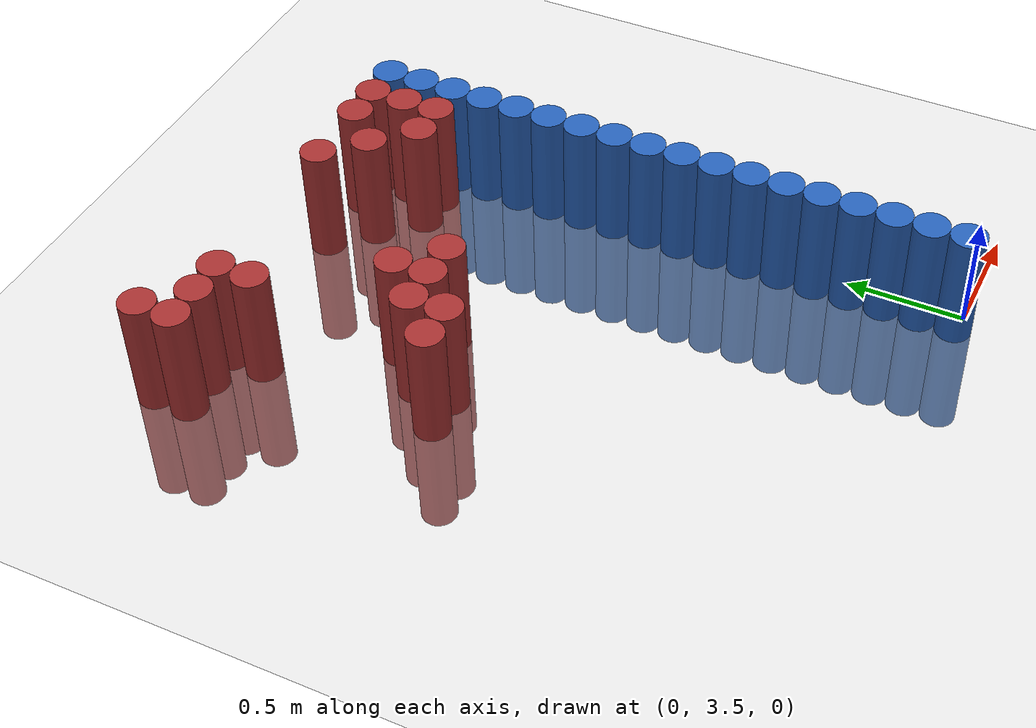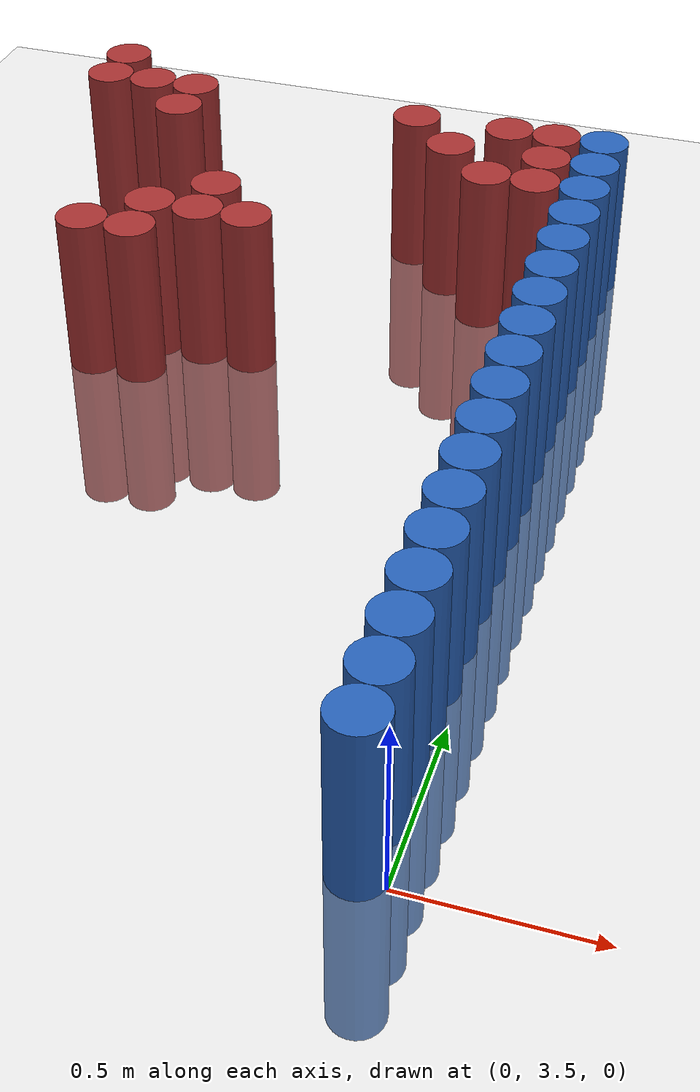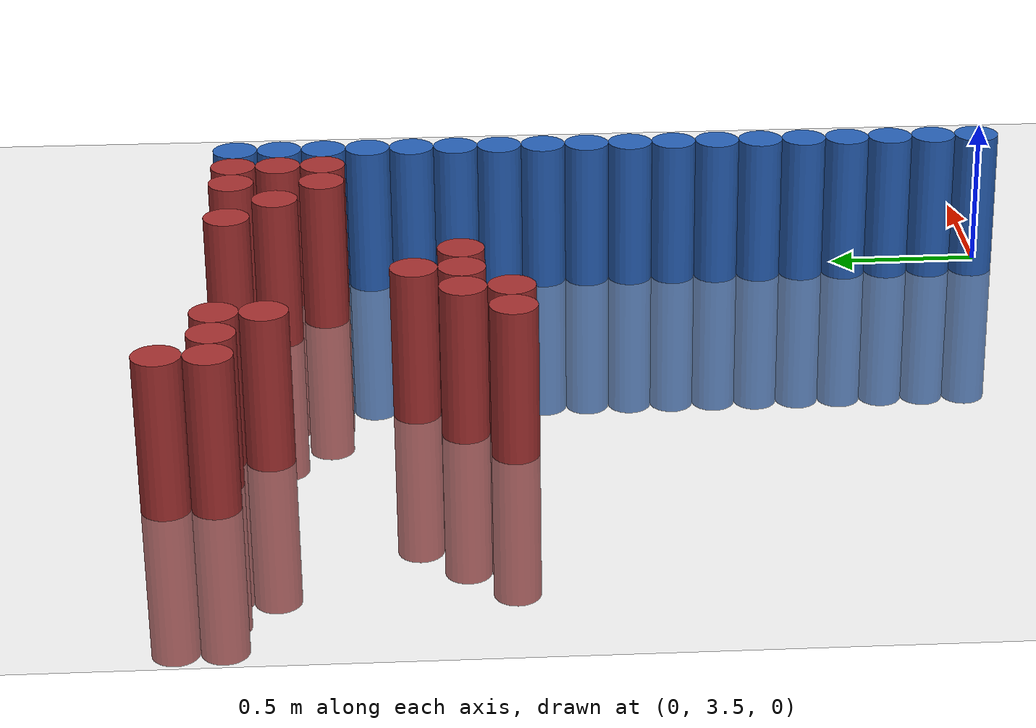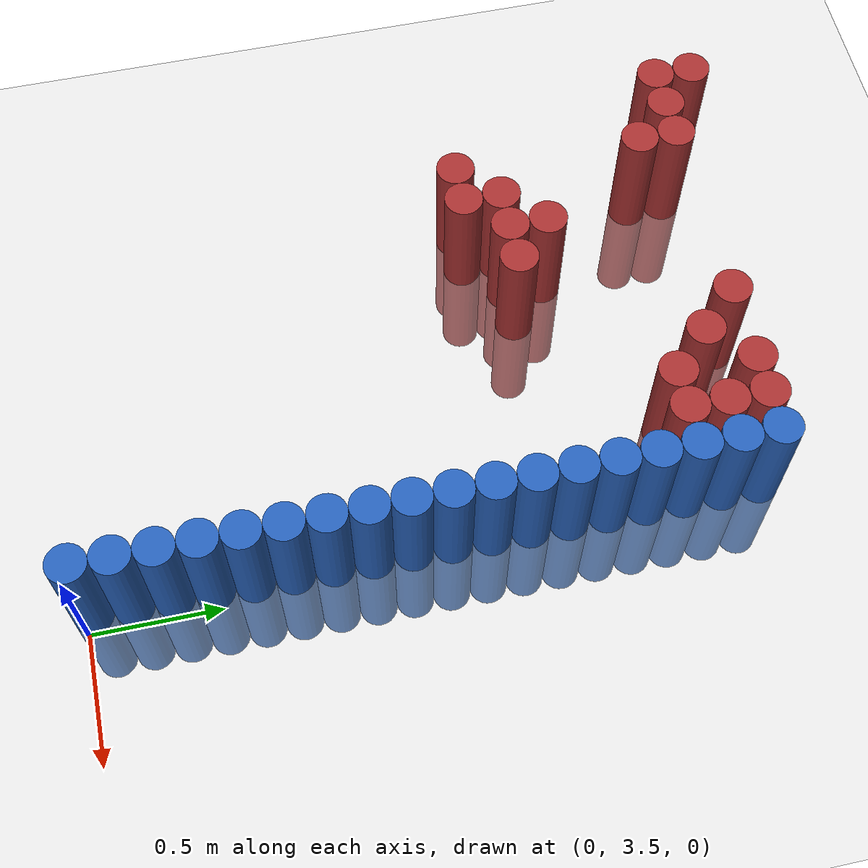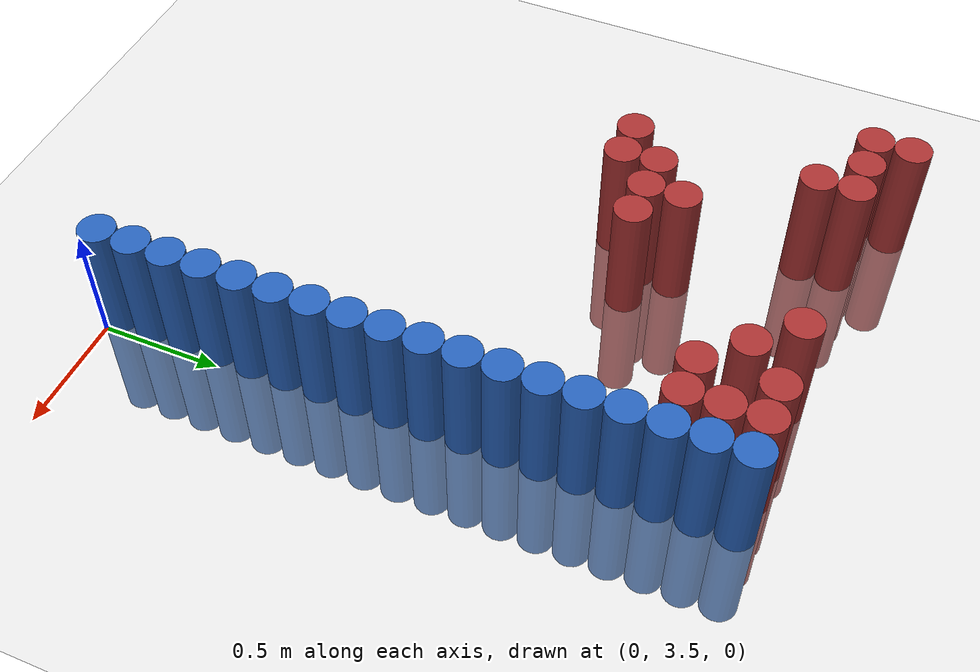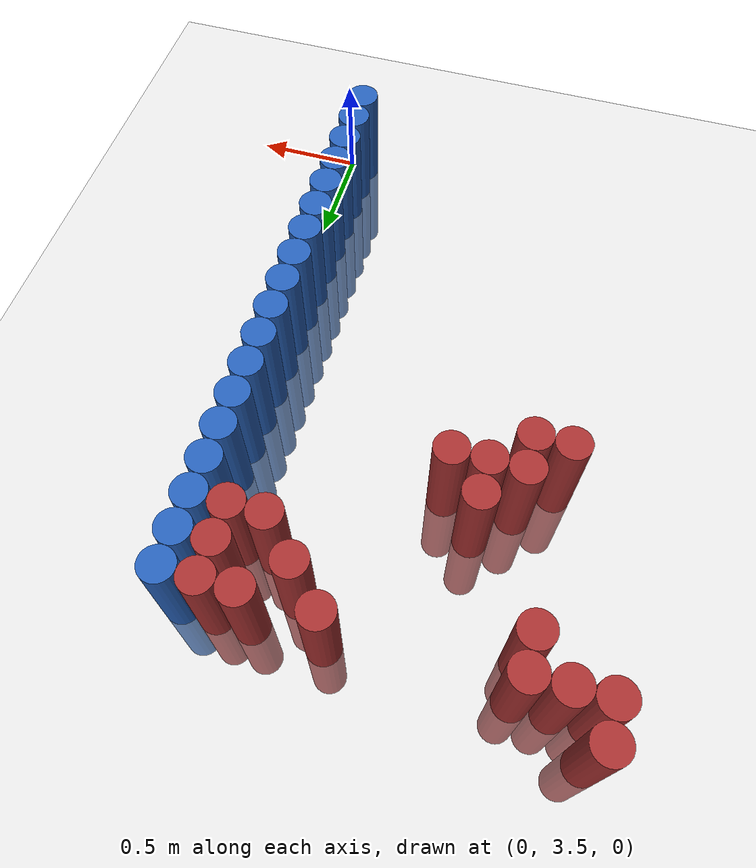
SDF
<sdf version="1.6">
 <world name="default">
  <model name="ground_plane">
   <static>1</static>
   <link name="link">
    <collision name="collision">
     <geometry><plane><normal>0 0 1</normal><size>100 100</size></plane></geometry>
     <surface><friction><ode><mu>100</mu><mu2>50</mu2></ode></friction></surface>
    </collision>
    <visual name="visual">
     <cast_shadows>0</cast_shadows>
     <geometry><plane><normal>0 0 1</normal><size>100 100</size></plane></geometry>
     <material>
      <script><uri>file://media/materials/scripts/gazebo.material</uri><name>Gazebo/Grey</name></script>
     </material>
    </visual>
   </link>
  </model>
  <model name="unit_cylinder_74">
   <static>1</static>
   <pose>-0.075000 3.525000 0.000000 0.000000 0.000000 0.000000</pose>
   <link name="link">
    <inertial>
     <mass>1</mass>
     <inertia><ixx>0.145833</ixx><ixy>0</ixy><ixz>0</ixz><iyy>0.145833</iyy><iyz>0</iyz><izz>0.125</izz></inertia>
    </inertial>
    <collision name="collision">
     <geometry><cylinder><radius>0.075000</radius><length>1</length></cylinder></geometry>
    </collision>
    <visual name="visual">
     <geometry><cylinder><radius>0.075000</radius><length>1</length></cylinder></geometry>
     <material>
      <ambient>0.152000 0.379000 0.720000 1</ambient>
      <diffuse>0.152000 0.379000 0.720000 1</diffuse>
     </material>
     <material>
      <script><name>Gazebo/Grey</name><uri>file://media/materials/scripts/gazebo.material</uri></script>
     </material>
    </visual>
    <sensor name="sensor_contact" type="contact"><contact><collision>collision</collision></contact></sensor>
   </link>
   <plugin filename="gz-sim-touchplugin-system" name="gz::sim::systems::TouchPlugin">
    <target>robot</target>
    <namespace>robot</namespace>
    <time>0.001</time>
    <enabled>true</enabled>
   </plugin>
  </model>
  <model name="unit_cylinder_76">
   <static>1</static>
   <pose>-0.075000 3.675000 0.000000 0.000000 0.000000 0.000000</pose>
   <link name="link">
    <inertial>
     <mass>1</mass>
     <inertia><ixx>0.145833</ixx><ixy>0</ixy><ixz>0</ixz><iyy>0.145833</iyy><iyz>0</iyz><izz>0.125</izz></inertia>
    </inertial>
    <collision name="collision">
     <geometry><cylinder><radius>0.075000</radius><length>1</length></cylinder></geometry>
    </collision>
    <visual name="visual">
     <geometry><cylinder><radius>0.075000</radius><length>1</length></cylinder></geometry>
     <material>
      <ambient>0.152000 0.379000 0.720000 1</ambient>
      <diffuse>0.152000 0.379000 0.720000 1</diffuse>
     </material>
     <material>
      <script><name>Gazebo/Grey</name><uri>file://media/materials/scripts/gazebo.material</uri></script>
     </material>
    </visual>
    <sensor name="sensor_contact" type="contact"><contact><collision>collision</collision></contact></sensor>
   </link>
   <plugin filename="gz-sim-touchplugin-system" name="gz::sim::systems::TouchPlugin">
    <target>robot</target>
    <namespace>robot</namespace>
    <time>0.001</time>
    <enabled>true</enabled>
   </plugin>
  </model>
  <model name="unit_cylinder_78">
   <static>1</static>
   <pose>-0.075000 3.825000 0.000000 0.000000 0.000000 0.000000</pose>
   <link name="link">
    <inertial>
     <mass>1</mass>
     <inertia><ixx>0.145833</ixx><ixy>0</ixy><ixz>0</ixz><iyy>0.145833</iyy><iyz>0</iyz><izz>0.125</izz></inertia>
    </inertial>
    <collision name="collision">
     <geometry><cylinder><radius>0.075000</radius><length>1</length></cylinder></geometry>
    </collision>
    <visual name="visual">
     <geometry><cylinder><radius>0.075000</radius><length>1</length></cylinder></geometry>
     <material>
      <ambient>0.152000 0.379000 0.720000 1</ambient>
      <diffuse>0.152000 0.379000 0.720000 1</diffuse>
     </material>
     <material>
      <script><name>Gazebo/Grey</name><uri>file://media/materials/scripts/gazebo.material</uri></script>
     </material>
    </visual>
    <sensor name="sensor_contact" type="contact"><contact><collision>collision</collision></contact></sensor>
   </link>
   <plugin filename="gz-sim-touchplugin-system" name="gz::sim::systems::TouchPlugin">
    <target>robot</target>
    <namespace>robot</namespace>
    <time>0.001</time>
    <enabled>true</enabled>
   </plugin>
  </model>
  <model name="unit_cylinder_80">
   <static>1</static>
   <pose>-0.075000 3.975000 0.000000 0.000000 0.000000 0.000000</pose>
   <link name="link">
    <inertial>
     <mass>1</mass>
     <inertia><ixx>0.145833</ixx><ixy>0</ixy><ixz>0</ixz><iyy>0.145833</iyy><iyz>0</iyz><izz>0.125</izz></inertia>
    </inertial>
    <collision name="collision">
     <geometry><cylinder><radius>0.075000</radius><length>1</length></cylinder></geometry>
    </collision>
    <visual name="visual">
     <geometry><cylinder><radius>0.075000</radius><length>1</length></cylinder></geometry>
     <material>
      <ambient>0.152000 0.379000 0.720000 1</ambient>
      <diffuse>0.152000 0.379000 0.720000 1</diffuse>
     </material>
     <material>
      <script><name>Gazebo/Grey</name><uri>file://media/materials/scripts/gazebo.material</uri></script>
     </material>
    </visual>
    <sensor name="sensor_contact" type="contact"><contact><collision>collision</collision></contact></sensor>
   </link>
   <plugin filename="gz-sim-touchplugin-system" name="gz::sim::systems::TouchPlugin">
    <target>robot</target>
    <namespace>robot</namespace>
    <time>0.001</time>
    <enabled>true</enabled>
   </plugin>
  </model>
  <model name="unit_cylinder_82">
   <static>1</static>
   <pose>-0.075000 4.125000 0.000000 0.000000 0.000000 0.000000</pose>
   <link name="link">
    <inertial>
     <mass>1</mass>
     <inertia><ixx>0.145833</ixx><ixy>0</ixy><ixz>0</ixz><iyy>0.145833</iyy><iyz>0</iyz><izz>0.125</izz></inertia>
    </inertial>
    <collision name="collision">
     <geometry><cylinder><radius>0.075000</radius><length>1</length></cylinder></geometry>
    </collision>
    <visual name="visual">
     <geometry><cylinder><radius>0.075000</radius><length>1</length></cylinder></geometry>
     <material>
      <ambient>0.152000 0.379000 0.720000 1</ambient>
      <diffuse>0.152000 0.379000 0.720000 1</diffuse>
     </material>
     <material>
      <script><name>Gazebo/Grey</name><uri>file://media/materials/scripts/gazebo.material</uri></script>
     </material>
    </visual>
    <sensor name="sensor_contact" type="contact"><contact><collision>collision</collision></contact></sensor>
   </link>
   <plugin filename="gz-sim-touchplugin-system" name="gz::sim::systems::TouchPlugin">
    <target>robot</target>
    <namespace>robot</namespace>
    <time>0.001</time>
    <enabled>true</enabled>
   </plugin>
  </model>
  <model name="unit_cylinder_84">
   <static>1</static>
   <pose>-0.075000 4.275000 0.000000 0.000000 0.000000 0.000000</pose>
   <link name="link">
    <inertial>
     <mass>1</mass>
     <inertia><ixx>0.145833</ixx><ixy>0</ixy><ixz>0</ixz><iyy>0.145833</iyy><iyz>0</iyz><izz>0.125</izz></inertia>
    </inertial>
    <collision name="collision">
     <geometry><cylinder><radius>0.075000</radius><length>1</length></cylinder></geometry>
    </collision>
    <visual name="visual">
     <geometry><cylinder><radius>0.075000</radius><length>1</length></cylinder></geometry>
     <material>
      <ambient>0.152000 0.379000 0.720000 1</ambient>
      <diffuse>0.152000 0.379000 0.720000 1</diffuse>
     </material>
     <material>
      <script><name>Gazebo/Grey</name><uri>file://media/materials/scripts/gazebo.material</uri></script>
     </material>
    </visual>
    <sensor name="sensor_contact" type="contact"><contact><collision>collision</collision></contact></sensor>
   </link>
   <plugin filename="gz-sim-touchplugin-system" name="gz::sim::systems::TouchPlugin">
    <target>robot</target>
    <namespace>robot</namespace>
    <time>0.001</time>
    <enabled>true</enabled>
   </plugin>
  </model>
  <model name="unit_cylinder_86">
   <static>1</static>
   <pose>-0.075000 4.425000 0.000000 0.000000 0.000000 0.000000</pose>
   <link name="link">
    <inertial>
     <mass>1</mass>
     <inertia><ixx>0.145833</ixx><ixy>0</ixy><ixz>0</ixz><iyy>0.145833</iyy><iyz>0</iyz><izz>0.125</izz></inertia>
    </inertial>
    <collision name="collision">
     <geometry><cylinder><radius>0.075000</radius><length>1</length></cylinder></geometry>
    </collision>
    <visual name="visual">
     <geometry><cylinder><radius>0.075000</radius><length>1</length></cylinder></geometry>
     <material>
      <ambient>0.152000 0.379000 0.720000 1</ambient>
      <diffuse>0.152000 0.379000 0.720000 1</diffuse>
     </material>
     <material>
      <script><name>Gazebo/Grey</name><uri>file://media/materials/scripts/gazebo.material</uri></script>
     </material>
    </visual>
    <sensor name="sensor_contact" type="contact"><contact><collision>collision</collision></contact></sensor>
   </link>
   <plugin filename="gz-sim-touchplugin-system" name="gz::sim::systems::TouchPlugin">
    <target>robot</target>
    <namespace>robot</namespace>
    <time>0.001</time>
    <enabled>true</enabled>
   </plugin>
  </model>
  <model name="unit_cylinder_88">
   <static>1</static>
   <pose>-0.075000 4.575000 0.000000 0.000000 0.000000 0.000000</pose>
   <link name="link">
    <inertial>
     <mass>1</mass>
     <inertia><ixx>0.145833</ixx><ixy>0</ixy><ixz>0</ixz><iyy>0.145833</iyy><iyz>0</iyz><izz>0.125</izz></inertia>
    </inertial>
    <collision name="collision">
     <geometry><cylinder><radius>0.075000</radius><length>1</length></cylinder></geometry>
    </collision>
    <visual name="visual">
     <geometry><cylinder><radius>0.075000</radius><length>1</length></cylinder></geometry>
     <material>
      <ambient>0.152000 0.379000 0.720000 1</ambient>
      <diffuse>0.152000 0.379000 0.720000 1</diffuse>
     </material>
     <material>
      <script><name>Gazebo/Grey</name><uri>file://media/materials/scripts/gazebo.material</uri></script>
     </material>
    </visual>
    <sensor name="sensor_contact" type="contact"><contact><collision>collision</collision></contact></sensor>
   </link>
   <plugin filename="gz-sim-touchplugin-system" name="gz::sim::systems::TouchPlugin">
    <target>robot</target>
    <namespace>robot</namespace>
    <time>0.001</time>
    <enabled>true</enabled>
   </plugin>
  </model>
  <model name="unit_cylinder_90">
   <static>1</static>
   <pose>-0.075000 4.725000 0.000000 0.000000 0.000000 0.000000</pose>
   <link name="link">
    <inertial>
     <mass>1</mass>
     <inertia><ixx>0.145833</ixx><ixy>0</ixy><ixz>0</ixz><iyy>0.145833</iyy><iyz>0</iyz><izz>0.125</izz></inertia>
    </inertial>
    <collision name="collision">
     <geometry><cylinder><radius>0.075000</radius><length>1</length></cylinder></geometry>
    </collision>
    <visual name="visual">
     <geometry><cylinder><radius>0.075000</radius><length>1</length></cylinder></geometry>
     <material>
      <ambient>0.152000 0.379000 0.720000 1</ambient>
      <diffuse>0.152000 0.379000 0.720000 1</diffuse>
     </material>
     <material>
      <script><name>Gazebo/Grey</name><uri>file://media/materials/scripts/gazebo.material</uri></script>
     </material>
    </visual>
    <sensor name="sensor_contact" type="contact"><contact><collision>collision</collision></contact></sensor>
   </link>
   <plugin filename="gz-sim-touchplugin-system" name="gz::sim::systems::TouchPlugin">
    <target>robot</target>
    <namespace>robot</namespace>
    <time>0.001</time>
    <enabled>true</enabled>
   </plugin>
  </model>
  <model name="unit_cylinder_92">
   <static>1</static>
   <pose>-0.075000 4.875000 0.000000 0.000000 0.000000 0.000000</pose>
   <link name="link">
    <inertial>
     <mass>1</mass>
     <inertia><ixx>0.145833</ixx><ixy>0</ixy><ixz>0</ixz><iyy>0.145833</iyy><iyz>0</iyz><izz>0.125</izz></inertia>
    </inertial>
    <collision name="collision">
     <geometry><cylinder><radius>0.075000</radius><length>1</length></cylinder></geometry>
    </collision>
    <visual name="visual">
     <geometry><cylinder><radius>0.075000</radius><length>1</length></cylinder></geometry>
     <material>
      <ambient>0.152000 0.379000 0.720000 1</ambient>
      <diffuse>0.152000 0.379000 0.720000 1</diffuse>
     </material>
     <material>
      <script><name>Gazebo/Grey</name><uri>file://media/materials/scripts/gazebo.material</uri></script>
     </material>
    </visual>
    <sensor name="sensor_contact" type="contact"><contact><collision>collision</collision></contact></sensor>
   </link>
   <plugin filename="gz-sim-touchplugin-system" name="gz::sim::systems::TouchPlugin">
    <target>robot</target>
    <namespace>robot</namespace>
    <time>0.001</time>
    <enabled>true</enabled>
   </plugin>
  </model>
  <model name="unit_cylinder_94">
   <static>1</static>
   <pose>-0.075000 5.025000 0.000000 0.000000 0.000000 0.000000</pose>
   <link name="link">
    <inertial>
     <mass>1</mass>
     <inertia><ixx>0.145833</ixx><ixy>0</ixy><ixz>0</ixz><iyy>0.145833</iyy><iyz>0</iyz><izz>0.125</izz></inertia>
    </inertial>
    <collision name="collision">
     <geometry><cylinder><radius>0.075000</radius><length>1</length></cylinder></geometry>
    </collision>
    <visual name="visual">
     <geometry><cylinder><radius>0.075000</radius><length>1</length></cylinder></geometry>
     <material>
      <ambient>0.152000 0.379000 0.720000 1</ambient>
      <diffuse>0.152000 0.379000 0.720000 1</diffuse>
     </material>
     <material>
      <script><name>Gazebo/Grey</name><uri>file://media/materials/scripts/gazebo.material</uri></script>
     </material>
    </visual>
    <sensor name="sensor_contact" type="contact"><contact><collision>collision</collision></contact></sensor>
   </link>
   <plugin filename="gz-sim-touchplugin-system" name="gz::sim::systems::TouchPlugin">
    <target>robot</target>
    <namespace>robot</namespace>
    <time>0.001</time>
    <enabled>true</enabled>
   </plugin>
  </model>
  <model name="unit_cylinder_204">
   <static>1</static>
   <pose>-1.725000 6.075000 0.000000 0.000000 0.000000 0.000000</pose>
   <link name="link">
    <inertial>
     <mass>1</mass>
     <inertia><ixx>0.145833</ixx><ixy>0</ixy><ixz>0</ixz><iyy>0.145833</iyy><iyz>0</iyz><izz>0.125</izz></inertia>
    </inertial>
    <collision name="collision">
     <geometry><cylinder><radius>0.075000</radius><length>1</length></cylinder></geometry>
    </collision>
    <visual name="visual">
     <geometry><cylinder><radius>0.075000</radius><length>1</length></cylinder></geometry>
     <material>
      <ambient>0.648000 0.192000 0.192000 1</ambient>
      <diffuse>0.648000 0.192000 0.192000 1</diffuse>
     </material>
     <material>
      <script><name>Gazebo/Grey</name><uri>file://media/materials/scripts/gazebo.material</uri></script>
     </material>
    </visual>
    <sensor name="sensor_contact" type="contact"><contact><collision>collision</collision></contact></sensor>
   </link>
   <plugin filename="gz-sim-touchplugin-system" name="gz::sim::systems::TouchPlugin">
    <target>robot</target>
    <namespace>robot</namespace>
    <time>0.001</time>
    <enabled>true</enabled>
   </plugin>
  </model>
  <model name="unit_cylinder_205">
   <static>1</static>
   <pose>-1.725000 6.225000 0.000000 0.000000 0.000000 0.000000</pose>
   <link name="link">
    <inertial>
     <mass>1</mass>
     <inertia><ixx>0.145833</ixx><ixy>0</ixy><ixz>0</ixz><iyy>0.145833</iyy><iyz>0</iyz><izz>0.125</izz></inertia>
    </inertial>
    <collision name="collision">
     <geometry><cylinder><radius>0.075000</radius><length>1</length></cylinder></geometry>
    </collision>
    <visual name="visual">
     <geometry><cylinder><radius>0.075000</radius><length>1</length></cylinder></geometry>
     <material>
      <ambient>0.648000 0.192000 0.192000 1</ambient>
      <diffuse>0.648000 0.192000 0.192000 1</diffuse>
     </material>
     <material>
      <script><name>Gazebo/Grey</name><uri>file://media/materials/scripts/gazebo.material</uri></script>
     </material>
    </visual>
    <sensor name="sensor_contact" type="contact"><contact><collision>collision</collision></contact></sensor>
   </link>
   <plugin filename="gz-sim-touchplugin-system" name="gz::sim::systems::TouchPlugin">
    <target>robot</target>
    <namespace>robot</namespace>
    <time>0.001</time>
    <enabled>true</enabled>
   </plugin>
  </model>
  <model name="unit_cylinder_207">
   <static>1</static>
   <pose>-1.575000 6.075000 0.000000 0.000000 0.000000 0.000000</pose>
   <link name="link">
    <inertial>
     <mass>1</mass>
     <inertia><ixx>0.145833</ixx><ixy>0</ixy><ixz>0</ixz><iyy>0.145833</iyy><iyz>0</iyz><izz>0.125</izz></inertia>
    </inertial>
    <collision name="collision">
     <geometry><cylinder><radius>0.075000</radius><length>1</length></cylinder></geometry>
    </collision>
    <visual name="visual">
     <geometry><cylinder><radius>0.075000</radius><length>1</length></cylinder></geometry>
     <material>
      <ambient>0.648000 0.192000 0.192000 1</ambient>
      <diffuse>0.648000 0.192000 0.192000 1</diffuse>
     </material>
     <material>
      <script><name>Gazebo/Grey</name><uri>file://media/materials/scripts/gazebo.material</uri></script>
     </material>
    </visual>
    <sensor name="sensor_contact" type="contact"><contact><collision>collision</collision></contact></sensor>
   </link>
   <plugin filename="gz-sim-touchplugin-system" name="gz::sim::systems::TouchPlugin">
    <target>robot</target>
    <namespace>robot</namespace>
    <time>0.001</time>
    <enabled>true</enabled>
   </plugin>
  </model>
  <model name="unit_cylinder_209">
   <static>1</static>
   <pose>-1.425000 5.175000 0.000000 0.000000 0.000000 0.000000</pose>
   <link name="link">
    <inertial>
     <mass>1</mass>
     <inertia><ixx>0.145833</ixx><ixy>0</ixy><ixz>0</ixz><iyy>0.145833</iyy><iyz>0</iyz><izz>0.125</izz></inertia>
    </inertial>
    <collision name="collision">
     <geometry><cylinder><radius>0.075000</radius><length>1</length></cylinder></geometry>
    </collision>
    <visual name="visual">
     <geometry><cylinder><radius>0.075000</radius><length>1</length></cylinder></geometry>
     <material>
      <ambient>0.648000 0.192000 0.192000 1</ambient>
      <diffuse>0.648000 0.192000 0.192000 1</diffuse>
     </material>
     <material>
      <script><name>Gazebo/Grey</name><uri>file://media/materials/scripts/gazebo.material</uri></script>
     </material>
    </visual>
    <sensor name="sensor_contact" type="contact"><contact><collision>collision</collision></contact></sensor>
   </link>
   <plugin filename="gz-sim-touchplugin-system" name="gz::sim::systems::TouchPlugin">
    <target>robot</target>
    <namespace>robot</namespace>
    <time>0.001</time>
    <enabled>true</enabled>
   </plugin>
  </model>
  <model name="unit_cylinder_210">
   <static>1</static>
   <pose>-1.425000 5.925000 0.000000 0.000000 0.000000 0.000000</pose>
   <link name="link">
    <inertial>
     <mass>1</mass>
     <inertia><ixx>0.145833</ixx><ixy>0</ixy><ixz>0</ixz><iyy>0.145833</iyy><iyz>0</iyz><izz>0.125</izz></inertia>
    </inertial>
    <collision name="collision">
     <geometry><cylinder><radius>0.075000</radius><length>1</length></cylinder></geometry>
    </collision>
    <visual name="visual">
     <geometry><cylinder><radius>0.075000</radius><length>1</length></cylinder></geometry>
     <material>
      <ambient>0.648000 0.192000 0.192000 1</ambient>
      <diffuse>0.648000 0.192000 0.192000 1</diffuse>
     </material>
     <material>
      <script><name>Gazebo/Grey</name><uri>file://media/materials/scripts/gazebo.material</uri></script>
     </material>
    </visual>
    <sensor name="sensor_contact" type="contact"><contact><collision>collision</collision></contact></sensor>
   </link>
   <plugin filename="gz-sim-touchplugin-system" name="gz::sim::systems::TouchPlugin">
    <target>robot</target>
    <namespace>robot</namespace>
    <time>0.001</time>
    <enabled>true</enabled>
   </plugin>
  </model>
  <model name="unit_cylinder_211">
   <static>1</static>
   <pose>-1.425000 6.075000 0.000000 0.000000 0.000000 0.000000</pose>
   <link name="link">
    <inertial>
     <mass>1</mass>
     <inertia><ixx>0.145833</ixx><ixy>0</ixy><ixz>0</ixz><iyy>0.145833</iyy><iyz>0</iyz><izz>0.125</izz></inertia>
    </inertial>
    <collision name="collision">
     <geometry><cylinder><radius>0.075000</radius><length>1</length></cylinder></geometry>
    </collision>
    <visual name="visual">
     <geometry><cylinder><radius>0.075000</radius><length>1</length></cylinder></geometry>
     <material>
      <ambient>0.648000 0.192000 0.192000 1</ambient>
      <diffuse>0.648000 0.192000 0.192000 1</diffuse>
     </material>
     <material>
      <script><name>Gazebo/Grey</name><uri>file://media/materials/scripts/gazebo.material</uri></script>
     </material>
    </visual>
    <sensor name="sensor_contact" type="contact"><contact><collision>collision</collision></contact></sensor>
   </link>
   <plugin filename="gz-sim-touchplugin-system" name="gz::sim::systems::TouchPlugin">
    <target>robot</target>
    <namespace>robot</namespace>
    <time>0.001</time>
    <enabled>true</enabled>
   </plugin>
  </model>
  <model name="unit_cylinder_214">
   <static>1</static>
   <pose>-1.275000 5.175000 0.000000 0.000000 0.000000 0.000000</pose>
   <link name="link">
    <inertial>
     <mass>1</mass>
     <inertia><ixx>0.145833</ixx><ixy>0</ixy><ixz>0</ixz><iyy>0.145833</iyy><iyz>0</iyz><izz>0.125</izz></inertia>
    </inertial>
    <collision name="collision">
     <geometry><cylinder><radius>0.075000</radius><length>1</length></cylinder></geometry>
    </collision>
    <visual name="visual">
     <geometry><cylinder><radius>0.075000</radius><length>1</length></cylinder></geometry>
     <material>
      <ambient>0.648000 0.192000 0.192000 1</ambient>
      <diffuse>0.648000 0.192000 0.192000 1</diffuse>
     </material>
     <material>
      <script><name>Gazebo/Grey</name><uri>file://media/materials/scripts/gazebo.material</uri></script>
     </material>
    </visual>
    <sensor name="sensor_contact" type="contact"><contact><collision>collision</collision></contact></sensor>
   </link>
   <plugin filename="gz-sim-touchplugin-system" name="gz::sim::systems::TouchPlugin">
    <target>robot</target>
    <namespace>robot</namespace>
    <time>0.001</time>
    <enabled>true</enabled>
   </plugin>
  </model>
  <model name="unit_cylinder_215">
   <static>1</static>
   <pose>-1.275000 5.325000 0.000000 0.000000 0.000000 0.000000</pose>
   <link name="link">
    <inertial>
     <mass>1</mass>
     <inertia><ixx>0.145833</ixx><ixy>0</ixy><ixz>0</ixz><iyy>0.145833</iyy><iyz>0</iyz><izz>0.125</izz></inertia>
    </inertial>
    <collision name="collision">
     <geometry><cylinder><radius>0.075000</radius><length>1</length></cylinder></geometry>
    </collision>
    <visual name="visual">
     <geometry><cylinder><radius>0.075000</radius><length>1</length></cylinder></geometry>
     <material>
      <ambient>0.648000 0.192000 0.192000 1</ambient>
      <diffuse>0.648000 0.192000 0.192000 1</diffuse>
     </material>
     <material>
      <script><name>Gazebo/Grey</name><uri>file://media/materials/scripts/gazebo.material</uri></script>
     </material>
    </visual>
    <sensor name="sensor_contact" type="contact"><contact><collision>collision</collision></contact></sensor>
   </link>
   <plugin filename="gz-sim-touchplugin-system" name="gz::sim::systems::TouchPlugin">
    <target>robot</target>
    <namespace>robot</namespace>
    <time>0.001</time>
    <enabled>true</enabled>
   </plugin>
  </model>
  <model name="unit_cylinder_218">
   <static>1</static>
   <pose>-1.125000 5.325000 0.000000 0.000000 0.000000 0.000000</pose>
   <link name="link">
    <inertial>
     <mass>1</mass>
     <inertia><ixx>0.145833</ixx><ixy>0</ixy><ixz>0</ixz><iyy>0.145833</iyy><iyz>0</iyz><izz>0.125</izz></inertia>
    </inertial>
    <collision name="collision">
     <geometry><cylinder><radius>0.075000</radius><length>1</length></cylinder></geometry>
    </collision>
    <visual name="visual">
     <geometry><cylinder><radius>0.075000</radius><length>1</length></cylinder></geometry>
     <material>
      <ambient>0.648000 0.192000 0.192000 1</ambient>
      <diffuse>0.648000 0.192000 0.192000 1</diffuse>
     </material>
     <material>
      <script><name>Gazebo/Grey</name><uri>file://media/materials/scripts/gazebo.material</uri></script>
     </material>
    </visual>
    <sensor name="sensor_contact" type="contact"><contact><collision>collision</collision></contact></sensor>
   </link>
   <plugin filename="gz-sim-touchplugin-system" name="gz::sim::systems::TouchPlugin">
    <target>robot</target>
    <namespace>robot</namespace>
    <time>0.001</time>
    <enabled>true</enabled>
   </plugin>
  </model>
  <model name="unit_cylinder_219">
   <static>1</static>
   <pose>-1.125000 5.475000 0.000000 0.000000 0.000000 0.000000</pose>
   <link name="link">
    <inertial>
     <mass>1</mass>
     <inertia><ixx>0.145833</ixx><ixy>0</ixy><ixz>0</ixz><iyy>0.145833</iyy><iyz>0</iyz><izz>0.125</izz></inertia>
    </inertial>
    <collision name="collision">
     <geometry><cylinder><radius>0.075000</radius><length>1</length></cylinder></geometry>
    </collision>
    <visual name="visual">
     <geometry><cylinder><radius>0.075000</radius><length>1</length></cylinder></geometry>
     <material>
      <ambient>0.648000 0.192000 0.192000 1</ambient>
      <diffuse>0.648000 0.192000 0.192000 1</diffuse>
     </material>
     <material>
      <script><name>Gazebo/Grey</name><uri>file://media/materials/scripts/gazebo.material</uri></script>
     </material>
    </visual>
    <sensor name="sensor_contact" type="contact"><contact><collision>collision</collision></contact></sensor>
   </link>
   <plugin filename="gz-sim-touchplugin-system" name="gz::sim::systems::TouchPlugin">
    <target>robot</target>
    <namespace>robot</namespace>
    <time>0.001</time>
    <enabled>true</enabled>
   </plugin>
  </model>
  <model name="unit_cylinder_221">
   <static>1</static>
   <pose>-0.975000 5.325000 0.000000 0.000000 0.000000 0.000000</pose>
   <link name="link">
    <inertial>
     <mass>1</mass>
     <inertia><ixx>0.145833</ixx><ixy>0</ixy><ixz>0</ixz><iyy>0.145833</iyy><iyz>0</iyz><izz>0.125</izz></inertia>
    </inertial>
    <collision name="collision">
     <geometry><cylinder><radius>0.075000</radius><length>1</length></cylinder></geometry>
    </collision>
    <visual name="visual">
     <geometry><cylinder><radius>0.075000</radius><length>1</length></cylinder></geometry>
     <material>
      <ambient>0.648000 0.192000 0.192000 1</ambient>
      <diffuse>0.648000 0.192000 0.192000 1</diffuse>
     </material>
     <material>
      <script><name>Gazebo/Grey</name><uri>file://media/materials/scripts/gazebo.material</uri></script>
     </material>
    </visual>
    <sensor name="sensor_contact" type="contact"><contact><collision>collision</collision></contact></sensor>
   </link>
   <plugin filename="gz-sim-touchplugin-system" name="gz::sim::systems::TouchPlugin">
    <target>robot</target>
    <namespace>robot</namespace>
    <time>0.001</time>
    <enabled>true</enabled>
   </plugin>
  </model>
  <model name="unit_cylinder_228">
   <static>1</static>
   <pose>-0.675000 6.075000 0.000000 0.000000 0.000000 0.000000</pose>
   <link name="link">
    <inertial>
     <mass>1</mass>
     <inertia><ixx>0.145833</ixx><ixy>0</ixy><ixz>0</ixz><iyy>0.145833</iyy><iyz>0</iyz><izz>0.125</izz></inertia>
    </inertial>
    <collision name="collision">
     <geometry><cylinder><radius>0.075000</radius><length>1</length></cylinder></geometry>
    </collision>
    <visual name="visual">
     <geometry><cylinder><radius>0.075000</radius><length>1</length></cylinder></geometry>
     <material>
      <ambient>0.648000 0.192000 0.192000 1</ambient>
      <diffuse>0.648000 0.192000 0.192000 1</diffuse>
     </material>
     <material>
      <script><name>Gazebo/Grey</name><uri>file://media/materials/scripts/gazebo.material</uri></script>
     </material>
    </visual>
    <sensor name="sensor_contact" type="contact"><contact><collision>collision</collision></contact></sensor>
   </link>
   <plugin filename="gz-sim-touchplugin-system" name="gz::sim::systems::TouchPlugin">
    <target>robot</target>
    <namespace>robot</namespace>
    <time>0.001</time>
    <enabled>true</enabled>
   </plugin>
  </model>
  <model name="unit_cylinder_232">
   <static>1</static>
   <pose>-0.525000 5.925000 0.000000 0.000000 0.000000 0.000000</pose>
   <link name="link">
    <inertial>
     <mass>1</mass>
     <inertia><ixx>0.145833</ixx><ixy>0</ixy><ixz>0</ixz><iyy>0.145833</iyy><iyz>0</iyz><izz>0.125</izz></inertia>
    </inertial>
    <collision name="collision">
     <geometry><cylinder><radius>0.075000</radius><length>1</length></cylinder></geometry>
    </collision>
    <visual name="visual">
     <geometry><cylinder><radius>0.075000</radius><length>1</length></cylinder></geometry>
     <material>
      <ambient>0.648000 0.192000 0.192000 1</ambient>
      <diffuse>0.648000 0.192000 0.192000 1</diffuse>
     </material>
     <material>
      <script><name>Gazebo/Grey</name><uri>file://media/materials/scripts/gazebo.material</uri></script>
     </material>
    </visual>
    <sensor name="sensor_contact" type="contact"><contact><collision>collision</collision></contact></sensor>
   </link>
   <plugin filename="gz-sim-touchplugin-system" name="gz::sim::systems::TouchPlugin">
    <target>robot</target>
    <namespace>robot</namespace>
    <time>0.001</time>
    <enabled>true</enabled>
   </plugin>
  </model>
  <model name="unit_cylinder_237">
   <static>1</static>
   <pose>-0.375000 5.775000 0.000000 0.000000 0.000000 0.000000</pose>
   <link name="link">
    <inertial>
     <mass>1</mass>
     <inertia><ixx>0.145833</ixx><ixy>0</ixy><ixz>0</ixz><iyy>0.145833</iyy><iyz>0</iyz><izz>0.125</izz></inertia>
    </inertial>
    <collision name="collision">
     <geometry><cylinder><radius>0.075000</radius><length>1</length></cylinder></geometry>
    </collision>
    <visual name="visual">
     <geometry><cylinder><radius>0.075000</radius><length>1</length></cylinder></geometry>
     <material>
      <ambient>0.648000 0.192000 0.192000 1</ambient>
      <diffuse>0.648000 0.192000 0.192000 1</diffuse>
     </material>
     <material>
      <script><name>Gazebo/Grey</name><uri>file://media/materials/scripts/gazebo.material</uri></script>
     </material>
    </visual>
    <sensor name="sensor_contact" type="contact"><contact><collision>collision</collision></contact></sensor>
   </link>
   <plugin filename="gz-sim-touchplugin-system" name="gz::sim::systems::TouchPlugin">
    <target>robot</target>
    <namespace>robot</namespace>
    <time>0.001</time>
    <enabled>true</enabled>
   </plugin>
  </model>
  <model name="unit_cylinder_238">
   <static>1</static>
   <pose>-0.375000 6.075000 0.000000 0.000000 0.000000 0.000000</pose>
   <link name="link">
    <inertial>
     <mass>1</mass>
     <inertia><ixx>0.145833</ixx><ixy>0</ixy><ixz>0</ixz><iyy>0.145833</iyy><iyz>0</iyz><izz>0.125</izz></inertia>
    </inertial>
    <collision name="collision">
     <geometry><cylinder><radius>0.075000</radius><length>1</length></cylinder></geometry>
    </collision>
    <visual name="visual">
     <geometry><cylinder><radius>0.075000</radius><length>1</length></cylinder></geometry>
     <material>
      <ambient>0.648000 0.192000 0.192000 1</ambient>
      <diffuse>0.648000 0.192000 0.192000 1</diffuse>
     </material>
     <material>
      <script><name>Gazebo/Grey</name><uri>file://media/materials/scripts/gazebo.material</uri></script>
     </material>
    </visual>
    <sensor name="sensor_contact" type="contact"><contact><collision>collision</collision></contact></sensor>
   </link>
   <plugin filename="gz-sim-touchplugin-system" name="gz::sim::systems::TouchPlugin">
    <target>robot</target>
    <namespace>robot</namespace>
    <time>0.001</time>
    <enabled>true</enabled>
   </plugin>
  </model>
  <model name="unit_cylinder_245">
   <static>1</static>
   <pose>-0.225000 5.775000 0.000000 0.000000 0.000000 0.000000</pose>
   <link name="link">
    <inertial>
     <mass>1</mass>
     <inertia><ixx>0.145833</ixx><ixy>0</ixy><ixz>0</ixz><iyy>0.145833</iyy><iyz>0</iyz><izz>0.125</izz></inertia>
    </inertial>
    <collision name="collision">
     <geometry><cylinder><radius>0.075000</radius><length>1</length></cylinder></geometry>
    </collision>
    <visual name="visual">
     <geometry><cylinder><radius>0.075000</radius><length>1</length></cylinder></geometry>
     <material>
      <ambient>0.648000 0.192000 0.192000 1</ambient>
      <diffuse>0.648000 0.192000 0.192000 1</diffuse>
     </material>
     <material>
      <script><name>Gazebo/Grey</name><uri>file://media/materials/scripts/gazebo.material</uri></script>
     </material>
    </visual>
    <sensor name="sensor_contact" type="contact"><contact><collision>collision</collision></contact></sensor>
   </link>
   <plugin filename="gz-sim-touchplugin-system" name="gz::sim::systems::TouchPlugin">
    <target>robot</target>
    <namespace>robot</namespace>
    <time>0.001</time>
    <enabled>true</enabled>
   </plugin>
  </model>
  <model name="unit_cylinder_246">
   <static>1</static>
   <pose>-0.225000 5.925000 0.000000 0.000000 0.000000 0.000000</pose>
   <link name="link">
    <inertial>
     <mass>1</mass>
     <inertia><ixx>0.145833</ixx><ixy>0</ixy><ixz>0</ixz><iyy>0.145833</iyy><iyz>0</iyz><izz>0.125</izz></inertia>
    </inertial>
    <collision name="collision">
     <geometry><cylinder><radius>0.075000</radius><length>1</length></cylinder></geometry>
    </collision>
    <visual name="visual">
     <geometry><cylinder><radius>0.075000</radius><length>1</length></cylinder></geometry>
     <material>
      <ambient>0.648000 0.192000 0.192000 1</ambient>
      <diffuse>0.648000 0.192000 0.192000 1</diffuse>
     </material>
     <material>
      <script><name>Gazebo/Grey</name><uri>file://media/materials/scripts/gazebo.material</uri></script>
     </material>
    </visual>
    <sensor name="sensor_contact" type="contact"><contact><collision>collision</collision></contact></sensor>
   </link>
   <plugin filename="gz-sim-touchplugin-system" name="gz::sim::systems::TouchPlugin">
    <target>robot</target>
    <namespace>robot</namespace>
    <time>0.001</time>
    <enabled>true</enabled>
   </plugin>
  </model>
  <model name="unit_cylinder_247">
   <static>1</static>
   <pose>-0.225000 6.075000 0.000000 0.000000 0.000000 0.000000</pose>
   <link name="link">
    <inertial>
     <mass>1</mass>
     <inertia><ixx>0.145833</ixx><ixy>0</ixy><ixz>0</ixz><iyy>0.145833</iyy><iyz>0</iyz><izz>0.125</izz></inertia>
    </inertial>
    <collision name="collision">
     <geometry><cylinder><radius>0.075000</radius><length>1</length></cylinder></geometry>
    </collision>
    <visual name="visual">
     <geometry><cylinder><radius>0.075000</radius><length>1</length></cylinder></geometry>
     <material>
      <ambient>0.648000 0.192000 0.192000 1</ambient>
      <diffuse>0.648000 0.192000 0.192000 1</diffuse>
     </material>
     <material>
      <script><name>Gazebo/Grey</name><uri>file://media/materials/scripts/gazebo.material</uri></script>
     </material>
    </visual>
    <sensor name="sensor_contact" type="contact"><contact><collision>collision</collision></contact></sensor>
   </link>
   <plugin filename="gz-sim-touchplugin-system" name="gz::sim::systems::TouchPlugin">
    <target>robot</target>
    <namespace>robot</namespace>
    <time>0.001</time>
    <enabled>true</enabled>
   </plugin>
  </model>
  <model name="unit_cylinder_262">
   <static>1</static>
   <pose>-0.075000 5.175000 0.000000 0.000000 0.000000 0.000000</pose>
   <link name="link">
    <inertial>
     <mass>1</mass>
     <inertia><ixx>0.145833</ixx><ixy>0</ixy><ixz>0</ixz><iyy>0.145833</iyy><iyz>0</iyz><izz>0.125</izz></inertia>
    </inertial>
    <collision name="collision">
     <geometry><cylinder><radius>0.075000</radius><length>1</length></cylinder></geometry>
    </collision>
    <visual name="visual">
     <geometry><cylinder><radius>0.075000</radius><length>1</length></cylinder></geometry>
     <material>
      <ambient>0.152000 0.379000 0.720000 1</ambient>
      <diffuse>0.152000 0.379000 0.720000 1</diffuse>
     </material>
     <material>
      <script><name>Gazebo/Grey</name><uri>file://media/materials/scripts/gazebo.material</uri></script>
     </material>
    </visual>
    <sensor name="sensor_contact" type="contact"><contact><collision>collision</collision></contact></sensor>
   </link>
   <plugin filename="gz-sim-touchplugin-system" name="gz::sim::systems::TouchPlugin">
    <target>robot</target>
    <namespace>robot</namespace>
    <time>0.001</time>
    <enabled>true</enabled>
   </plugin>
  </model>
  <model name="unit_cylinder_263">
   <static>1</static>
   <pose>-0.075000 5.325000 0.000000 0.000000 0.000000 0.000000</pose>
   <link name="link">
    <inertial>
     <mass>1</mass>
     <inertia><ixx>0.145833</ixx><ixy>0</ixy><ixz>0</ixz><iyy>0.145833</iyy><iyz>0</iyz><izz>0.125</izz></inertia>
    </inertial>
    <collision name="collision">
     <geometry><cylinder><radius>0.075000</radius><length>1</length></cylinder></geometry>
    </collision>
    <visual name="visual">
     <geometry><cylinder><radius>0.075000</radius><length>1</length></cylinder></geometry>
     <material>
      <ambient>0.152000 0.379000 0.720000 1</ambient>
      <diffuse>0.152000 0.379000 0.720000 1</diffuse>
     </material>
     <material>
      <script><name>Gazebo/Grey</name><uri>file://media/materials/scripts/gazebo.material</uri></script>
     </material>
    </visual>
    <sensor name="sensor_contact" type="contact"><contact><collision>collision</collision></contact></sensor>
   </link>
   <plugin filename="gz-sim-touchplugin-system" name="gz::sim::systems::TouchPlugin">
    <target>robot</target>
    <namespace>robot</namespace>
    <time>0.001</time>
    <enabled>true</enabled>
   </plugin>
  </model>
  <model name="unit_cylinder_264">
   <static>1</static>
   <pose>-0.075000 5.475000 0.000000 0.000000 0.000000 0.000000</pose>
   <link name="link">
    <inertial>
     <mass>1</mass>
     <inertia><ixx>0.145833</ixx><ixy>0</ixy><ixz>0</ixz><iyy>0.145833</iyy><iyz>0</iyz><izz>0.125</izz></inertia>
    </inertial>
    <collision name="collision">
     <geometry><cylinder><radius>0.075000</radius><length>1</length></cylinder></geometry>
    </collision>
    <visual name="visual">
     <geometry><cylinder><radius>0.075000</radius><length>1</length></cylinder></geometry>
     <material>
      <ambient>0.152000 0.379000 0.720000 1</ambient>
      <diffuse>0.152000 0.379000 0.720000 1</diffuse>
     </material>
     <material>
      <script><name>Gazebo/Grey</name><uri>file://media/materials/scripts/gazebo.material</uri></script>
     </material>
    </visual>
    <sensor name="sensor_contact" type="contact"><contact><collision>collision</collision></contact></sensor>
   </link>
   <plugin filename="gz-sim-touchplugin-system" name="gz::sim::systems::TouchPlugin">
    <target>robot</target>
    <namespace>robot</namespace>
    <time>0.001</time>
    <enabled>true</enabled>
   </plugin>
  </model>
  <model name="unit_cylinder_265">
   <static>1</static>
   <pose>-0.075000 5.625000 0.000000 0.000000 0.000000 0.000000</pose>
   <link name="link">
    <inertial>
     <mass>1</mass>
     <inertia><ixx>0.145833</ixx><ixy>0</ixy><ixz>0</ixz><iyy>0.145833</iyy><iyz>0</iyz><izz>0.125</izz></inertia>
    </inertial>
    <collision name="collision">
     <geometry><cylinder><radius>0.075000</radius><length>1</length></cylinder></geometry>
    </collision>
    <visual name="visual">
     <geometry><cylinder><radius>0.075000</radius><length>1</length></cylinder></geometry>
     <material>
      <ambient>0.152000 0.379000 0.720000 1</ambient>
      <diffuse>0.152000 0.379000 0.720000 1</diffuse>
     </material>
     <material>
      <script><name>Gazebo/Grey</name><uri>file://media/materials/scripts/gazebo.material</uri></script>
     </material>
    </visual>
    <sensor name="sensor_contact" type="contact"><contact><collision>collision</collision></contact></sensor>
   </link>
   <plugin filename="gz-sim-touchplugin-system" name="gz::sim::systems::TouchPlugin">
    <target>robot</target>
    <namespace>robot</namespace>
    <time>0.001</time>
    <enabled>true</enabled>
   </plugin>
  </model>
  <model name="unit_cylinder_266">
   <static>1</static>
   <pose>-0.075000 5.775000 0.000000 0.000000 0.000000 0.000000</pose>
   <link name="link">
    <inertial>
     <mass>1</mass>
     <inertia><ixx>0.145833</ixx><ixy>0</ixy><ixz>0</ixz><iyy>0.145833</iyy><iyz>0</iyz><izz>0.125</izz></inertia>
    </inertial>
    <collision name="collision">
     <geometry><cylinder><radius>0.075000</radius><length>1</length></cylinder></geometry>
    </collision>
    <visual name="visual">
     <geometry><cylinder><radius>0.075000</radius><length>1</length></cylinder></geometry>
     <material>
      <ambient>0.152000 0.379000 0.720000 1</ambient>
      <diffuse>0.152000 0.379000 0.720000 1</diffuse>
     </material>
     <material>
      <script><name>Gazebo/Grey</name><uri>file://media/materials/scripts/gazebo.material</uri></script>
     </material>
    </visual>
    <sensor name="sensor_contact" type="contact"><contact><collision>collision</collision></contact></sensor>
   </link>
   <plugin filename="gz-sim-touchplugin-system" name="gz::sim::systems::TouchPlugin">
    <target>robot</target>
    <namespace>robot</namespace>
    <time>0.001</time>
    <enabled>true</enabled>
   </plugin>
  </model>
  <model name="unit_cylinder_267">
   <static>1</static>
   <pose>-0.075000 5.925000 0.000000 0.000000 0.000000 0.000000</pose>
   <link name="link">
    <inertial>
     <mass>1</mass>
     <inertia><ixx>0.145833</ixx><ixy>0</ixy><ixz>0</ixz><iyy>0.145833</iyy><iyz>0</iyz><izz>0.125</izz></inertia>
    </inertial>
    <collision name="collision">
     <geometry><cylinder><radius>0.075000</radius><length>1</length></cylinder></geometry>
    </collision>
    <visual name="visual">
     <geometry><cylinder><radius>0.075000</radius><length>1</length></cylinder></geometry>
     <material>
      <ambient>0.152000 0.379000 0.720000 1</ambient>
      <diffuse>0.152000 0.379000 0.720000 1</diffuse>
     </material>
     <material>
      <script><name>Gazebo/Grey</name><uri>file://media/materials/scripts/gazebo.material</uri></script>
     </material>
    </visual>
    <sensor name="sensor_contact" type="contact"><contact><collision>collision</collision></contact></sensor>
   </link>
   <plugin filename="gz-sim-touchplugin-system" name="gz::sim::systems::TouchPlugin">
    <target>robot</target>
    <namespace>robot</namespace>
    <time>0.001</time>
    <enabled>true</enabled>
   </plugin>
  </model>
  <model name="unit_cylinder_268">
   <static>1</static>
   <pose>-0.075000 6.075000 0.000000 0.000000 0.000000 0.000000</pose>
   <link name="link">
    <inertial>
     <mass>1</mass>
     <inertia><ixx>0.145833</ixx><ixy>0</ixy><ixz>0</ixz><iyy>0.145833</iyy><iyz>0</iyz><izz>0.125</izz></inertia>
    </inertial>
    <collision name="collision">
     <geometry><cylinder><radius>0.075000</radius><length>1</length></cylinder></geometry>
    </collision>
    <visual name="visual">
     <geometry><cylinder><radius>0.075000</radius><length>1</length></cylinder></geometry>
     <material>
      <ambient>0.152000 0.379000 0.720000 1</ambient>
      <diffuse>0.152000 0.379000 0.720000 1</diffuse>
     </material>
     <material>
      <script><name>Gazebo/Grey</name><uri>file://media/materials/scripts/gazebo.material</uri></script>
     </material>
    </visual>
    <sensor name="sensor_contact" type="contact"><contact><collision>collision</collision></contact></sensor>
   </link>
   <plugin filename="gz-sim-touchplugin-system" name="gz::sim::systems::TouchPlugin">
    <target>robot</target>
    <namespace>robot</namespace>
    <time>0.001</time>
    <enabled>true</enabled>
   </plugin>
  </model>
 </world>
</sdf>
